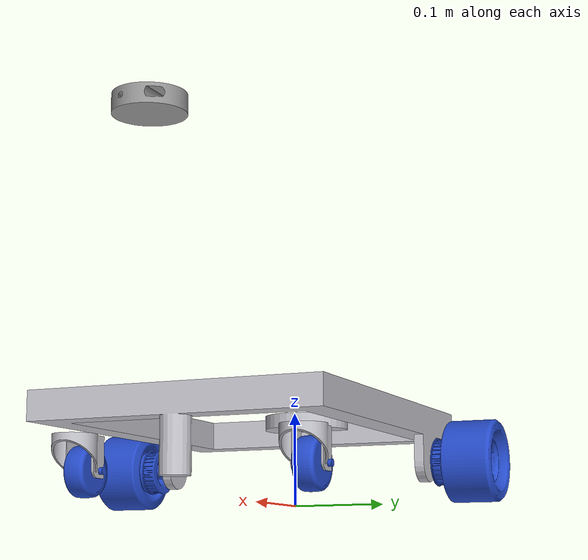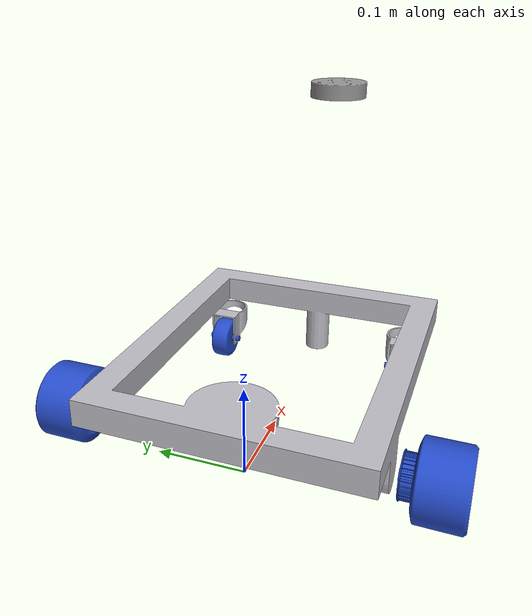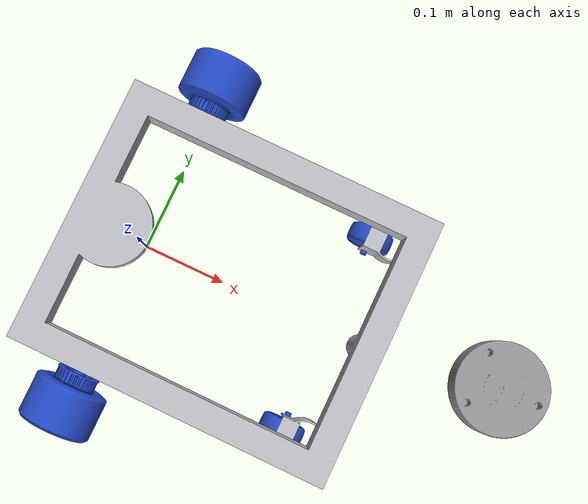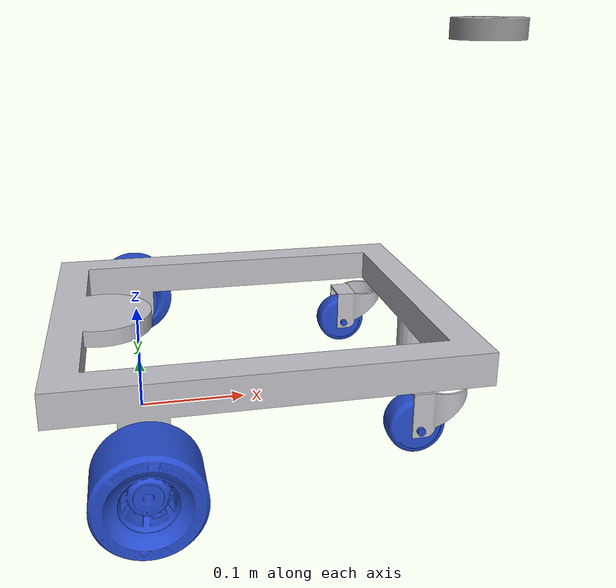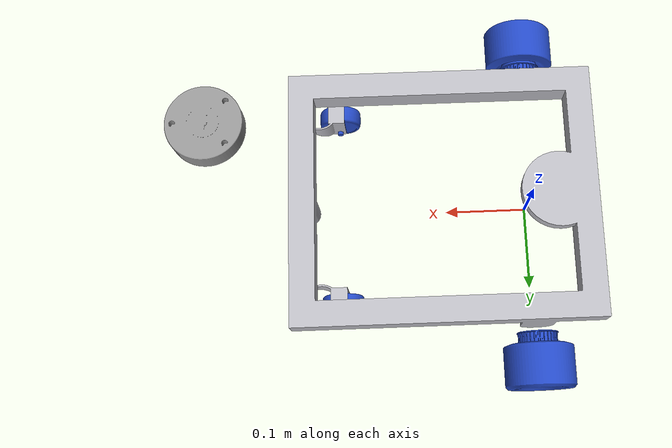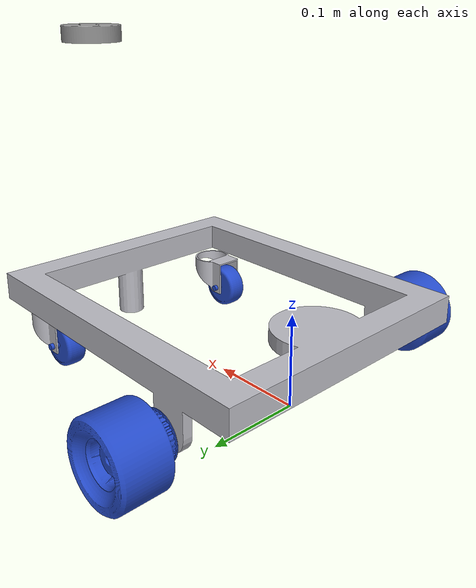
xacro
<?xml version="1.0"?>
<robot name="scuttle" xmlns:xacro="http://www.ros.org/wiki/xacro">

  <xacro:arg name="use_ros2_control" default="true" />
  <xacro:arg name="sim_mode" default="false" />

  <xacro:include filename="$(find scuttle_description)/urdf/scuttle_core.xacro" />

  <xacro:if value="$(arg use_ros2_control)">
    <xacro:include filename="$(find scuttle_description)/urdf/ros2_control.xacro" />
  </xacro:if>
  <xacro:unless value="$(arg use_ros2_control)">
    <xacro:include filename="$(find scuttle_description)/urdf/gazebo_control.xacro" />
  </xacro:unless>
  <xacro:include filename="$(find scuttle_description)/urdf/lidar.xacro" />

</robot>

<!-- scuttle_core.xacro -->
<robot name="scuttle" xmlns:xacro="http://www.ros.org/wiki/xacro">

  <!-- 1. DEFINE THE ARGUMENT -->
  <xacro:arg name="sim_mode" default="false"/>

  <!-- 2. LOGIC TO SWITCH JOINT TYPE -->
  <xacro:if value="$(arg sim_mode)">
      <xacro:property name="caster_type" value="continuous"/>
  </xacro:if>
  <xacro:unless value="$(arg sim_mode)">
      <xacro:property name="caster_type" value="fixed"/>
  </xacro:unless>

  <xacro:include filename="$(find scuttle_description)/urdf/materials.xacro" />
  <xacro:include filename="$(find scuttle_description)/urdf/scuttle.trans" />
  <!-- Make sure to include your ros2_control.xacro here and pass the arg if needed! -->

  <link name="base_link">
    <inertial>
      <origin rpy="0 0 0" xyz="0 0 0"/>
      <mass value="3.288323846275119"/>
      <inertia ixx="0.038876" ixy="1.3e-05" ixz="1e-06" iyy="0.047513" iyz="0.000486" izz="0.084083"/>
    </inertial>
    <visual>
      <origin rpy="0 0 1.570796" xyz="0 0 0"/>
      <geometry>
        <mesh filename="package://scuttle_description/meshes/base_link.stl" scale="0.001 0.001 0.001"/>
      </geometry>
      <material name="silver"/>
    </visual>
    <collision>
      <origin rpy="0 0 1.570796" xyz="0 0 0"/>
      <geometry>
        <mesh filename="package://scuttle_description/meshes/base_link_collision_1.stl" scale="0.001 0.001 0.001"/>
      </geometry>
    </collision>
  </link>

  <link name="l_wheel_1">
    <inertial>
      <origin rpy="0 0 0" xyz="-0.020325481156161784 -9.763736334427187e-09 4.516951403188418e-09"/>
      <mass value="0.5928646271111422"/>
      <inertia ixx="0.000334" ixy="0.0" ixz="-0.0" iyy="0.000332" iyz="-0.0" izz="0.000332"/>
    </inertial>
    <visual>
      <origin rpy="0 0 0" xyz="-0.21235 -0.0 -0.04175"/>
      <geometry>
        <mesh filename="package://scuttle_description/meshes/l_wheel_1.stl" scale="0.001 0.001 0.001"/>
      </geometry>
      <material name="blue"/>
    </visual>
    <collision>
      <origin rpy="0 0 0" xyz="-0.21235 -0.0 -0.04175"/>
      <geometry>
        <mesh filename="package://scuttle_description/meshes/l_wheel_collision_1.stl" scale="0.001 0.001 0.001"/>
      </geometry>
    </collision>
  </link>

  <link name="r_wheel_1">
    <inertial>
      <origin rpy="0 0 0" xyz="0.020325563043213257 1.3954236146756306e-08 2.0353343177514915e-09"/>
      <mass value="0.592867092340216"/>
      <inertia ixx="0.000334" ixy="0.0" ixz="0.0" iyy="0.000332" iyz="-0.0" izz="0.000332"/>
    </inertial>
    <visual>
      <origin rpy="0 0 0" xyz="0.21215 0.0 -0.04175"/>
      <geometry>
        <mesh filename="package://scuttle_description/meshes/r_wheel_1.stl" scale="0.001 0.001 0.001"/>
      </geometry>
      <material name="blue"/>
    </visual>
    <collision>
      <origin rpy="0 0 0" xyz="0.21215 0.0 -0.04175"/>
      <geometry>
        <mesh filename="package://scuttle_description/meshes/r_wheel_collision_1.stl" scale="0.001 0.001 0.001"/>
      </geometry>
    </collision>
  </link>

  <link name="r_caster_swivel_1">
    <inertial>
      <origin rpy="0 0 0" xyz="-0.0002554502352885568 0.010633952722858359 -0.012968467515129908"/>
      <mass value="0.02074189648802402"/>
      <inertia ixx="7e-06" ixy="0.0" ixz="0.0" iyy="8e-06" iyz="1e-06" izz="9e-06"/>
    </inertial>
    <visual>
      <origin rpy="0 0 0" xyz="0.119279 0.254415 -0.059282"/>
      <geometry>
        <mesh filename="package://scuttle_description/meshes/r_caster_swivel_1.stl" scale="0.001 0.001 0.001"/>
      </geometry>
      <material name="silver"/>
    </visual>
    <collision>
      <origin rpy="0 0 0" xyz="0.119279 0.254415 -0.059282"/>
      <geometry>
        <mesh filename="package://scuttle_description/meshes/r_caster_swivel_collision_1.stl" scale="0.001 0.001 0.001"/>
      </geometry>
    </collision>
  </link>

  <link name="l_caster_swivel_1">
    <inertial>
      <origin rpy="0 0 0" xyz="-0.00025520971284771765 0.010633952722903461 -0.012968467515129777"/>
      <mass value="0.02074189648802399"/>
      <inertia ixx="7e-06" ixy="0.0" ixz="0.0" iyy="8e-06" iyz="1e-06" izz="9e-06"/>
    </inertial>
    <visual>
      <origin rpy="0 0 0" xyz="-0.119015 0.254415 -0.059282"/>
      <geometry>
        <mesh filename="package://scuttle_description/meshes/l_caster_swivel_1.stl" scale="0.001 0.001 0.001"/>
      </geometry>
      <material name="silver"/>
    </visual>
    <collision>
      <origin rpy="0 0 0" xyz="-0.119015 0.254415 -0.059282"/>
      <geometry>
        <mesh filename="package://scuttle_description/meshes/l_caster_swivel_collision_1.stl" scale="0.001 0.001 0.001"/>
      </geometry>
    </collision>
  </link>

  <link name="l_caster_wheel_1">
    <inertial>
      <origin rpy="0 0 0" xyz="0.0160002016389222 -1.6368916427866864e-07 -7.02880924990934e-08"/>
      <mass value="0.03841110590847018"/>
      <inertia ixx="1.2e-05" ixy="0.0" ixz="-0.0" iyy="7e-06" iyz="0.0" izz="7e-06"/>
    </inertial>
    <visual>
      <origin rpy="0 0 0" xyz="-0.101223 0.230415 -0.025282"/>
      <geometry>
        <mesh filename="package://scuttle_description/meshes/l_caster_wheel_1.stl" scale="0.001 0.001 0.001"/>
      </geometry>
      <material name="blue"/>
    </visual>
    <collision>
      <origin rpy="0 0 0" xyz="-0.101223 0.230415 -0.025282"/>
      <geometry>
        <mesh filename="package://scuttle_description/meshes/l_caster_wheel_collision_1.stl" scale="0.001 0.001 0.001"/>
      </geometry>
    </collision>
  </link>

  <link name="r_caster_wheel_1">
    <inertial>
      <origin rpy="0 0 0" xyz="-0.016000038883518655 -1.6368920854881175e-07 -7.028809271419911e-08"/>
      <mass value="0.03841110590847031"/>
      <inertia ixx="1.2e-05" ixy="-0.0" ixz="0.0" iyy="7e-06" iyz="0.0" izz="7e-06"/>
    </inertial>
    <visual>
      <origin rpy="0 0 0" xyz="0.105071 0.230415 -0.025282"/>
      <geometry>
        <mesh filename="package://scuttle_description/meshes/r_caster_wheel_1.stl" scale="0.001 0.001 0.001"/>
      </geometry>
      <material name="blue"/>
    </visual>
    <collision>
      <origin rpy="0 0 0" xyz="0.105071 0.230415 -0.025282"/>
      <geometry>
        <mesh filename="package://scuttle_description/meshes/r_caster_wheel_collision_1.stl" scale="0.001 0.001 0.001"/>
      </geometry>
    </collision>
  </link>

  <!-- DRIVE WHEELS (Always continuous) -->
  <joint name="l_wheel_joint" type="continuous">
    <origin rpy="0 0 1.570796" xyz="0.0 0.21235 0.04175"/>
    <parent link="base_link"/>
    <child link="l_wheel_1"/>
    <axis xyz="1.0 -0.0 0.0"/>
  </joint>

  <joint name="r_wheel_joint" type="continuous">
    <origin rpy="0 0 1.570796" xyz="0.0 -0.21215 0.04175"/>
    <parent link="base_link"/>
    <child link="r_wheel_1"/>
    <axis xyz="1.0 0.0 -0.0"/>
  </joint>

  <!-- 3. CASTER JOINTS USING THE VARIABLE -->
  <joint name="r_caster_swivel_joint" type="${caster_type}">
    <origin rpy="0 0 1.570796" xyz="0.254415 0.119279 0.059282"/>
    <parent link="base_link"/>
    <child link="r_caster_swivel_1"/>
    <axis xyz="0.0 0.0 1.0"/>
  </joint>

  <joint name="l_caster_swivel_joint" type="${caster_type}">
    <origin rpy="0 0 1.570796" xyz="0.254415 -0.119015 0.059282"/>
    <parent link="base_link"/>
    <child link="l_caster_swivel_1"/>
    <axis xyz="0.0 -0.0 1.0"/>
  </joint>

  <joint name="l_caster_wheel_joint" type="${caster_type}">
    <origin rpy="0 0 0" xyz="-0.017792 0.024 -0.034"/>
    <parent link="l_caster_swivel_1"/>
    <child link="l_caster_wheel_1"/>
    <axis xyz="1.0 0.0 -0.0"/>
  </joint>

  <joint name="r_caster_wheel_joint" type="${caster_type}">
    <origin rpy="0 0 0" xyz="0.014208 0.024 -0.034"/>
    <parent link="r_caster_swivel_1"/>
    <child link="r_caster_wheel_1"/>
    <axis xyz="-1.0 -0.0 0.0"/>
  </joint>

  <gazebo reference="base_link">
    <material>${body_color}</material>
    <mu1>0.2</mu1>
    <mu2>0.2</mu2>
    <selfCollide>true</selfCollide>
    <gravity>true</gravity>
  </gazebo>

  <gazebo reference="l_wheel_1">
    <material>${wheel_color}</material>
    <mu1>0.9</mu1>
    <mu2>0.9</mu2>
    <selfCollide>true</selfCollide>
  </gazebo>

  <gazebo reference="r_wheel_1">
    <material>${wheel_color}</material>
    <mu1>0.9</mu1>
    <mu2>0.9</mu2>
    <selfCollide>true</selfCollide>
  </gazebo>

  <gazebo reference="r_caster_swivel_1">
    <material>${body_color}</material>
    <mu1>0.2</mu1>
    <mu2>0.2</mu2>
    <selfCollide>true</selfCollide>
  </gazebo>

  <gazebo reference="l_caster_swivel_1">
    <material>${body_color}</material>
    <mu1>0.2</mu1>
    <mu2>0.2</mu2>
    <selfCollide>true</selfCollide>
  </gazebo>

  <gazebo reference="l_caster_wheel_1">
    <material>${wheel_color}</material>
    <mu1>0.4</mu1>
    <mu2>0.4</mu2>
    <selfCollide>true</selfCollide>
  </gazebo>

  <gazebo reference="r_caster_wheel_1">
    <material>${wheel_color}</material>
    <mu1>0.4</mu1>
    <mu2>0.4</mu2>
    <selfCollide>true</selfCollide>
  </gazebo>

  <!-- gazebo joint publisher plugin -->
  <!-- This plugin is useful when sim_mode=true to publish the caster states -->
  <!-- When sim_mode=false (fixed joints), Gazebo may throw a warning that it can't find the joints, which is safe to ignore. -->
  <gazebo>
        <plugin name="gazebo_ros_joint_state_publisher"
        filename="libgazebo_ros_joint_state_publisher.so">
        <update_rate>40</update_rate>
        <joint_name>l_wheel_joint</joint_name>
        <joint_name>base_joint</joint_name>
        <joint_name>r_wheel_joint</joint_name>
        <joint_name>l_caster_swivel_joint</joint_name>
        <joint_name>r_caster_swivel_joint</joint_name>
        <joint_name>l_caster_wheel_joint</joint_name>
        <joint_name>r_caster_wheel_joint</joint_name>
      </plugin>
  </gazebo>
</robot>

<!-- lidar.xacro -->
<robot xmlns:xacro="http://www.ros.org/wiki/xacro">
<xacro:property name="lidar_color" value="Gazebo/Gray" />

<joint name="lidar_joint" type="fixed">
  <parent link="base_link" />
  <child link="laser_frame" />
  <origin xyz="0.33 0.0275 0.23" rpy="0 0 0" />
</joint>

<link name="laser_frame">
  <visual>
    <origin xyz="0 0 0" rpy="0 0 0"/>
    <geometry>
      <mesh filename="package://scuttle_description/meshes/lidar_1.stl" scale="0.001 0.001 0.001"/>
    </geometry>
  </visual>
  <collision>
    <origin xyz="0 0 0" rpy="0 0 0"/>
    <geometry>
      <mesh filename="package://scuttle_description/meshes/lidar_1.stl" scale="0.001 0.001 0.001"/>
    </geometry>
  </collision>
  <inertial>
    <mass value="0.05"/>
    <origin xyz="0 0 0" rpy="0 0 0"/>
    <inertia ixx="1e-4" iyy="1e-4" izz="1e-4" ixy="0" ixz="0" iyz="0"/>
  </inertial>
</link>

<gazebo reference="laser_frame">
  <material>Gazebo/Gray</material>

  <sensor name="lidar" type="ray">
    <pose>0 0 0 0 0 0</pose>
    <visualize>true</visualize>
    <update_rate>10</update_rate>

    <ray>
      <scan>
        <horizontal>
          <samples>360</samples>
          <min_angle>-3.14</min_angle>
          <max_angle>3.14</max_angle>
        </horizontal>
      </scan>
      <range>
        <min>0.15</min>
        <max>12</max>
      </range>
    </ray>

    <plugin name="lidar_plugin" filename="libgazebo_ros_ray_sensor.so">
      <topicName>/scan</topicName>
      <ros>
        <remapping>~/out:=scan</remapping>
      </ros>
      <output_type>sensor_msgs/LaserScan</output_type>
      <frame_name>laser_frame</frame_name>
    </plugin>
  </sensor>
</gazebo>

</robot>
